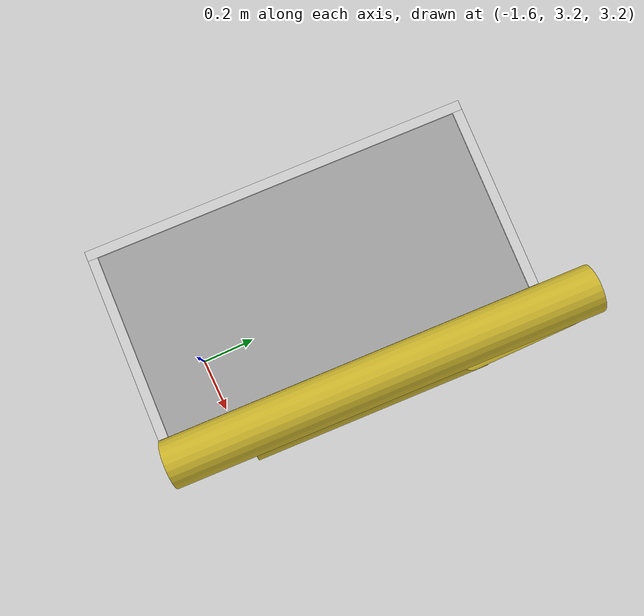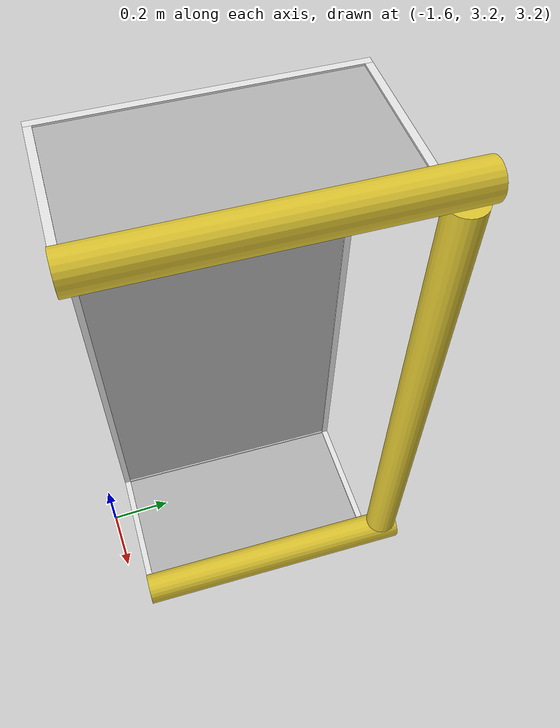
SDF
<sdf version="1.4">
 <world name="default">
  <model name="ground_plane">
   <static>1</static>
   <link name="link">
    <collision name="collision">
     <geometry><plane><normal>0 0 1</normal><size>100 100</size></plane></geometry>
     <surface><friction><ode><mu>100</mu><mu2>50</mu2></ode></friction></surface>
    </collision>
    <visual name="visual">
     <cast_shadows>0</cast_shadows>
     <geometry><plane><normal>0 0 1</normal><size>100 100</size></plane></geometry>
     <material>
      <script><uri>file://media/materials/scripts/gazebo.material</uri><name>Gazebo/Grey</name></script>
     </material>
    </visual>
    <velocity_decay><linear>0</linear><angular>0</angular></velocity_decay>
   </link>
  </model>
  <model name="RoboCup 2014 SPL Goal_3">
   <static>1</static>
   <link name="left_post">
    <pose>0 0.8 0.45 0 -0 0</pose>
    <collision name="collision">
     <geometry><cylinder><radius>0.05</radius><length>0.9</length></cylinder></geometry>
    </collision>
    <visual name="visual">
     <geometry><cylinder><radius>0.05</radius><length>0.9</length></cylinder></geometry>
     <material>
      <script><uri>file://media/materials/scripts/gazebo.material</uri><name>Gazebo/ZincYellow</name></script>
     </material>
    </visual>
    <velocity_decay><linear>0</linear><angular>0</angular></velocity_decay>
   </link>
   <link name="left_support_horiz_lower">
    <pose>0.24 0.8 0.01 0 -0 0</pose>
    <collision name="collision"><geometry><box><size>0.38 0.02 0.02</size></box></geometry></collision>
    <visual name="visual">
     <geometry><box><size>0.38 0.02 0.02</size></box></geometry>
     <material>
      <script><uri>file://media/materials/scripts/gazebo.material</uri><name>Gazebo/White</name></script>
     </material>
    </visual>
    <velocity_decay><linear>0</linear><angular>0</angular></velocity_decay>
   </link>
   <link name="left_support_horiz_upper">
    <pose>0.24 0.8 0.79 0 -0 0</pose>
    <collision name="collision"><geometry><box><size>0.38 0.02 0.02</size></box></geometry></collision>
    <visual name="visual">
     <geometry><box><size>0.38 0.02 0.02</size></box></geometry>
     <material>
      <script><uri>file://media/materials/scripts/gazebo.material</uri><name>Gazebo/White</name></script>
     </material>
    </visual>
    <velocity_decay><linear>0</linear><angular>0</angular></velocity_decay>
   </link>
   <link name="left_support_vertical">
    <pose>0.44 0.8 0.4 3.14159 1.57079 3.14159</pose>
    <collision name="collision"><geometry><box><size>0.8 0.02 0.02</size></box></geometry></collision>
    <visual name="visual">
     <geometry><box><size>0.8 0.02 0.02</size></box></geometry>
     <material>
      <script><uri>file://media/materials/scripts/gazebo.material</uri><name>Gazebo/White</name></script>
     </material>
    </visual>
    <velocity_decay><linear>0</linear><angular>0</angular></velocity_decay>
   </link>
   <link name="right_support_horiz_lower">
    <pose>0.24 -0.8 0.01 0 -0 0</pose>
    <collision name="collision"><geometry><box><size>0.38 0.02 0.02</size></box></geometry></collision>
    <visual name="visual">
     <geometry><box><size>0.38 0.02 0.02</size></box></geometry>
     <material>
      <script><uri>file://media/materials/scripts/gazebo.material</uri><name>Gazebo/White</name></script>
     </material>
    </visual>
    <velocity_decay><linear>0</linear><angular>0</angular></velocity_decay>
   </link>
   <link name="right_support_horiz_upper">
    <pose>0.24 -0.8 0.79 0 -0 0</pose>
    <collision name="collision"><geometry><box><size>0.38 0.02 0.02</size></box></geometry></collision>
    <visual name="visual">
     <geometry><box><size>0.38 0.02 0.02</size></box></geometry>
     <material>
      <script><uri>file://media/materials/scripts/gazebo.material</uri><name>Gazebo/White</name></script>
     </material>
    </visual>
    <velocity_decay><linear>0</linear><angular>0</angular></velocity_decay>
   </link>
   <link name="right_support_vertical">
    <pose>0.44 -0.8 0.4 3.14159 1.57079 3.14159</pose>
    <collision name="collision"><geometry><box><size>0.8 0.02 0.02</size></box></geometry></collision>
    <visual name="visual">
     <geometry><box><size>0.8 0.02 0.02</size></box></geometry>
     <material>
      <script><uri>file://media/materials/scripts/gazebo.material</uri><name>Gazebo/White</name></script>
     </material>
    </visual>
    <velocity_decay><linear>0</linear><angular>0</angular></velocity_decay>
   </link>
   <link name="center_support_horiz_lower">
    <pose>0.44 0 0.01 3.14159 1.57079 3.14159</pose>
    <collision name="collision"><geometry><box><size>0.02 1.58 0.02</size></box></geometry></collision>
    <visual name="visual">
     <geometry><box><size>0.02 1.58 0.02</size></box></geometry>
     <material>
      <script><uri>file://media/materials/scripts/gazebo.material</uri><name>Gazebo/White</name></script>
     </material>
    </visual>
    <velocity_decay><linear>0</linear><angular>0</angular></velocity_decay>
   </link>
   <link name="center_support_horiz_upper">
    <pose>0.44 0 0.79 3.14159 1.57079 3.14159</pose>
    <collision name="collision"><geometry><box><size>0.02 1.58 0.02</size></box></geometry></collision>
    <visual name="visual">
     <geometry><box><size>0.02 1.58 0.02</size></box></geometry>
     <material>
      <script><uri>file://media/materials/scripts/gazebo.material</uri><name>Gazebo/White</name></script>
     </material>
    </visual>
    <velocity_decay><linear>0</linear><angular>0</angular></velocity_decay>
   </link>
   <link name="right_post">
    <pose>0 -0.8 0.45 0 -0 0</pose>
    <collision name="collision">
     <geometry><cylinder><radius>0.05</radius><length>0.9</length></cylinder></geometry>
    </collision>
    <visual name="visual">
     <geometry><cylinder><radius>0.05</radius><length>0.9</length></cylinder></geometry>
     <material>
      <script><uri>file://media/materials/scripts/gazebo.material</uri><name>Gazebo/ZincYellow</name></script>
     </material>
    </visual>
    <velocity_decay><linear>0</linear><angular>0</angular></velocity_decay>
   </link>
   <link name="crossbar">
    <pose>0 0 0.85 1.57 1.57 1.39418e-13</pose>
    <collision name="collision">
     <geometry><cylinder><radius>0.05</radius><length>1.5</length></cylinder></geometry>
    </collision>
    <visual name="visual">
     <geometry><cylinder><radius>0.05</radius><length>1.5</length></cylinder></geometry>
     <material>
      <script><uri>file://media/materials/scripts/gazebo.material</uri><name>Gazebo/ZincYellow</name></script>
     </material>
    </visual>
    <velocity_decay><linear>0</linear><angular>0</angular></velocity_decay>
   </link>
   <link name="center_net">
    <pose>0.44 0 0.4 0 -0 0</pose>
    <collision name="collision"><geometry><box><size>0.01 1.6 0.8</size></box></geometry></collision>
    <visual name="visual">
     <geometry><box><size>0.01 1.6 0.8</size></box></geometry>
     <material>
      <script>
       <uri>model://robocup09_spl_field/materials/scripts/</uri>
       <uri>model://robocup09_spl_field/materials/textures/</uri>
       <name>RoboCup/Net</name>
      </script>
     </material>
    </visual>
    <velocity_decay><linear>0</linear><angular>0</angular></velocity_decay>
   </link>
   <link name="left_net">
    <pose>0.24 0.8 0.4 0 -0 0</pose>
    <collision name="collision"><geometry><box><size>0.38 0.01 0.76</size></box></geometry></collision>
    <visual name="visual">
     <geometry><box><size>0.38 0.01 0.76</size></box></geometry>
     <material>
      <script>
       <uri>model://robocup09_spl_field/materials/scripts/</uri>
       <uri>model://robocup09_spl_field/materials/textures/</uri>
       <name>RoboCup/Net</name>
      </script>
     </material>
    </visual>
    <velocity_decay><linear>0</linear><angular>0</angular></velocity_decay>
   </link>
   <link name="right_net">
    <pose>0.24 -0.8 0.4 0 -0 0</pose>
    <collision name="collision"><geometry><box><size>0.38 0.01 0.76</size></box></geometry></collision>
    <visual name="visual">
     <geometry><box><size>0.38 0.01 0.76</size></box></geometry>
     <material>
      <script>
       <uri>model://robocup09_spl_field/materials/scripts/</uri>
       <uri>model://robocup09_spl_field/materials/textures/</uri>
       <name>RoboCup/Net</name>
      </script>
     </material>
    </visual>
    <velocity_decay><linear>0</linear><angular>0</angular></velocity_decay>
   </link>
   <pose>-1.22142 3.24369 4.14288 1.56086 -0 3.10231</pose>
  </model>
 </world>
</sdf>
